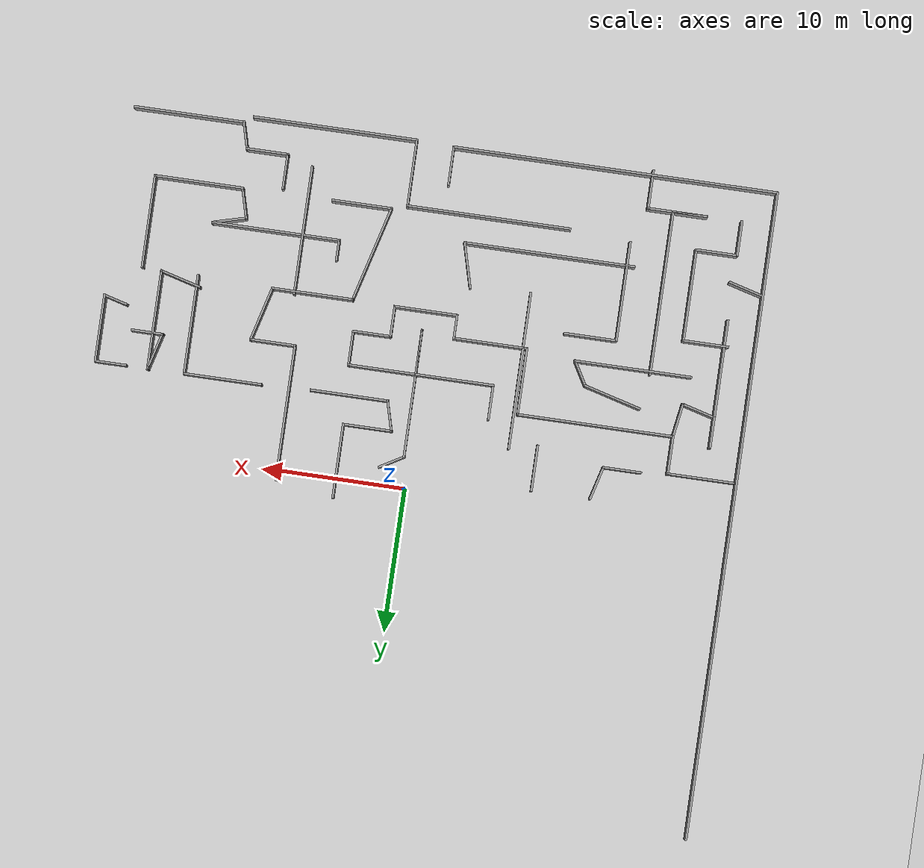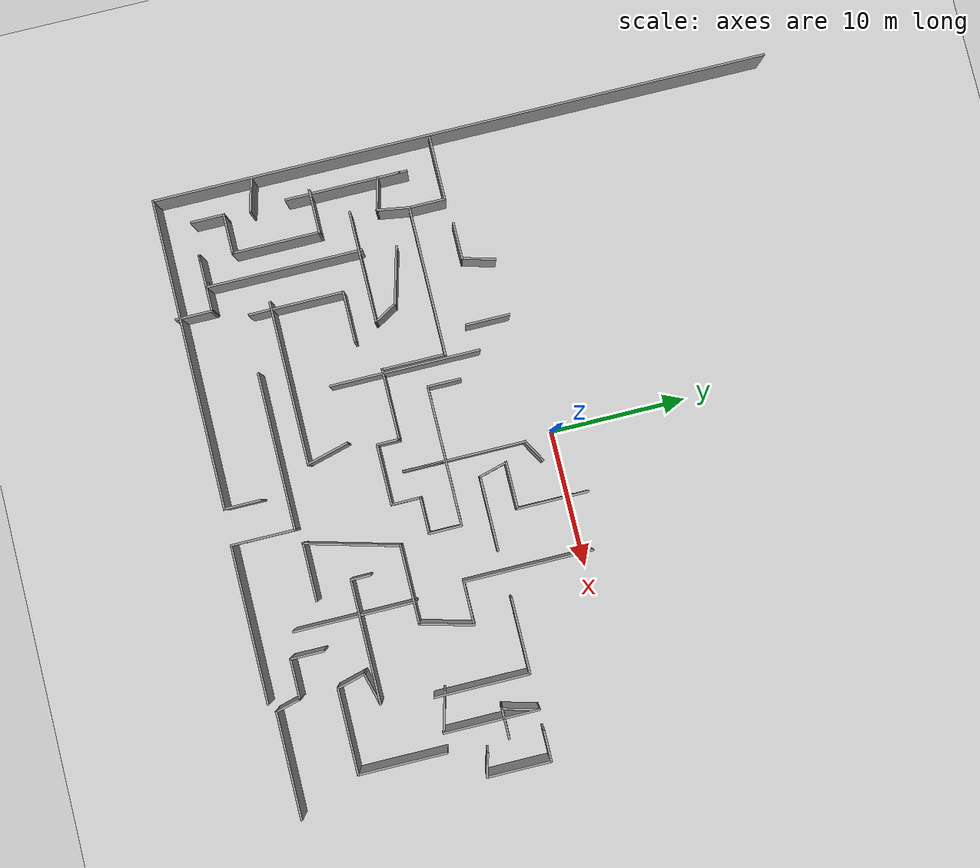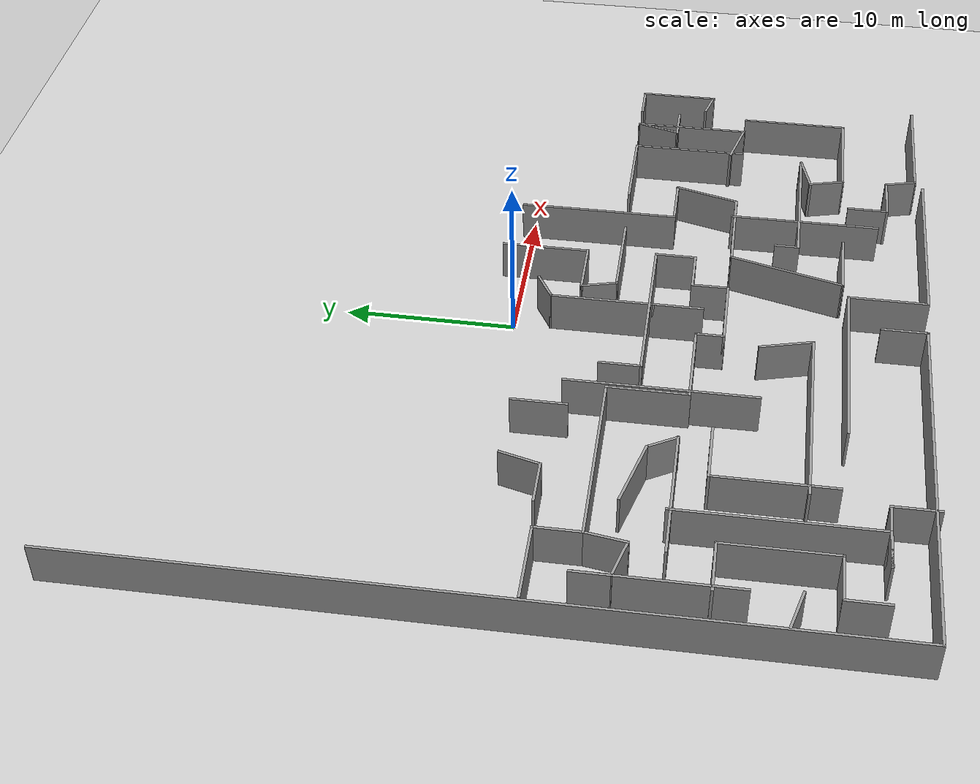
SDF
<sdf version="1.7">
 <world name="default">
  <model name="ground_plane">
   <static>1</static>
   <link name="link">
    <collision name="collision">
     <geometry><plane><normal>0 0 1</normal><size>100 100</size></plane></geometry>
     <surface>
      <contact><collide_bitmask>65535</collide_bitmask></contact>
      <friction><ode><mu>100</mu><mu2>50</mu2></ode></friction>
     </surface>
    </collision>
    <visual name="visual">
     <cast_shadows>0</cast_shadows>
     <geometry><plane><normal>0 0 1</normal><size>100 100</size></plane></geometry>
     <material>
      <script><uri>file://media/materials/scripts/gazebo.material</uri><name>Gazebo/Grey</name></script>
     </material>
    </visual>
   </link>
  </model>
  <model name="Untitled">
   <pose>-0.253478 -1.44353 0 0 -0 0</pose>
   <link name="Wall_0">
    <collision name="Wall_0_Collision">
     <geometry><box><size>45.25 0.15 2.5</size></box></geometry>
     <pose>0 0 1.25 0 -0 0</pose>
    </collision>
    <visual name="Wall_0_Visual">
     <pose>0 0 1.25 0 -0 0</pose>
     <geometry><box><size>45.25 0.15 2.5</size></box></geometry>
     <material>
      <script><uri>file://media/materials/scripts/gazebo.material</uri><name>Gazebo/Grey</name></script>
      <ambient>1 1 1 1</ambient>
     </material>
     <meta><layer>0</layer></meta>
    </visual>
    <pose>-22.4189 0.095442 0 0 -0 -1.5708</pose>
   </link>
   <link name="Wall_1">
    <collision name="Wall_1_Collision">
     <geometry><box><size>22.75 0.15 2.5</size></box></geometry>
     <pose>0 0 1.25 0 -0 0</pose>
    </collision>
    <visual name="Wall_1_Visual">
     <pose>0 0 1.25 0 -0 0</pose>
     <geometry><box><size>22.75 0.15 2.5</size></box></geometry>
     <material>
      <script><uri>file://media/materials/scripts/gazebo.material</uri><name>Gazebo/Grey</name></script>
      <ambient>1 1 1 1</ambient>
     </material>
     <meta><layer>0</layer></meta>
    </visual>
    <pose>-11.1189 -22.4546 0 0 -0 0</pose>
   </link>
   <link name="Wall_10">
    <collision name="Wall_10_Collision">
     <geometry><box><size>5.25 0.15 2.5</size></box></geometry>
     <pose>0 0 1.25 0 -0 0</pose>
    </collision>
    <visual name="Wall_10_Visual">
     <pose>0 0 1.25 0 -0 0</pose>
     <geometry><box><size>5.25 0.15 2.5</size></box></geometry>
     <material>
      <script><uri>file://media/materials/scripts/gazebo.material</uri><name>Gazebo/Grey</name></script>
      <ambient>1 1 1 1</ambient>
     </material>
     <meta><layer>0</layer></meta>
    </visual>
    <pose>-4.23172 -9.35225 0 0 -0 0</pose>
   </link>
   <link name="Wall_11">
    <collision name="Wall_11_Collision">
     <geometry><box><size>1.75 0.15 2.5</size></box></geometry>
     <pose>0 0 1.25 0 -0 0</pose>
    </collision>
    <visual name="Wall_11_Visual">
     <pose>0 0 1.25 0 -0 0</pose>
     <geometry><box><size>1.75 0.15 2.5</size></box></geometry>
     <material>
      <script><uri>file://media/materials/scripts/gazebo.material</uri><name>Gazebo/Grey</name></script>
      <ambient>1 1 1 1</ambient>
     </material>
     <meta><layer>0</layer></meta>
    </visual>
    <pose>-1.68172 -10.1523 0 0 -0 -1.5708</pose>
   </link>
   <link name="Wall_12">
    <collision name="Wall_12_Collision">
     <geometry><box><size>4.5 0.15 2.5</size></box></geometry>
     <pose>0 0 1.25 0 -0 0</pose>
    </collision>
    <visual name="Wall_12_Visual">
     <pose>0 0 1.25 0 -0 0</pose>
     <geometry><box><size>4.5 0.15 2.5</size></box></geometry>
     <material>
      <script><uri>file://media/materials/scripts/gazebo.material</uri><name>Gazebo/Grey</name></script>
      <ambient>1 1 1 1</ambient>
     </material>
     <meta><layer>0</layer></meta>
    </visual>
    <pose>0.493275 -10.9523 0 0 -0 0</pose>
   </link>
   <link name="Wall_121">
    <collision name="Wall_121_Collision">
     <geometry><box><size>9 0.15 2.5</size></box></geometry>
     <pose>0 0 1.25 0 -0 0</pose>
    </collision>
    <visual name="Wall_121_Visual">
     <pose>0 0 1.25 0 -0 0</pose>
     <geometry><box><size>9 0.15 2.5</size></box></geometry>
     <material>
      <script><uri>file://media/materials/scripts/gazebo.material</uri><name>Gazebo/Grey</name></script>
      <ambient>1 1 1 1</ambient>
     </material>
     <meta><layer>0</layer></meta>
    </visual>
    <pose>-20.2666 -8.76925 0 0 -0 1.5708</pose>
   </link>
   <link name="Wall_122">
    <collision name="Wall_122_Collision">
     <geometry><box><size>2.25 0.15 2.5</size></box></geometry>
     <pose>0 0 1.25 0 -0 0</pose>
    </collision>
    <visual name="Wall_122_Visual">
     <pose>0 0 1.25 0 -0 0</pose>
     <geometry><box><size>2.25 0.15 2.5</size></box></geometry>
     <material>
      <script><uri>file://media/materials/scripts/gazebo.material</uri><name>Gazebo/Grey</name></script>
      <ambient>1 1 1 1</ambient>
     </material>
     <meta><layer>0</layer></meta>
    </visual>
    <pose>-20.2666 -5.39425 0 0 -0 -1.5708</pose>
   </link>
   <link name="Wall_123">
    <collision name="Wall_123_Collision">
     <geometry><box><size>2.5 0.15 2.5</size></box></geometry>
     <pose>0 0 1.25 0 -0 0</pose>
    </collision>
    <visual name="Wall_123_Visual">
     <pose>0 0 1.25 0 -0 0</pose>
     <geometry><box><size>2.5 0.15 2.5</size></box></geometry>
     <material>
      <script><uri>file://media/materials/scripts/gazebo.material</uri><name>Gazebo/Grey</name></script>
      <ambient>1 1 1 1</ambient>
     </material>
     <meta><layer>0</layer></meta>
    </visual>
    <pose>-19.1317 -6.74836 0 0 -0 -0.261799</pose>
   </link>
   <link name="Wall_124">
    <collision name="Wall_124_Collision">
     <geometry><box><size>2.47899 0.15 2.5</size></box></geometry>
     <pose>0 0 1.25 0 -0 0</pose>
    </collision>
    <visual name="Wall_124_Visual">
     <pose>0 0 1.25 0 -0 0</pose>
     <geometry><box><size>2.47899 0.15 2.5</size></box></geometry>
     <material>
      <script><uri>file://media/materials/scripts/gazebo.material</uri><name>Gazebo/Grey</name></script>
      <ambient>1 1 1 1</ambient>
     </material>
     <meta><layer>0</layer></meta>
    </visual>
    <pose>-17.8142 -5.90236 0 0 -0 1.41344</pose>
   </link>
   <link name="Wall_126">
    <collision name="Wall_126_Collision">
     <geometry><box><size>2.5 0.15 2.5</size></box></geometry>
     <pose>0 0 1.25 0 -0 0</pose>
    </collision>
    <visual name="Wall_126_Visual">
     <pose>0 0 1.25 0 -0 0</pose>
     <geometry><box><size>2.5 0.15 2.5</size></box></geometry>
     <material>
      <script><uri>file://media/materials/scripts/gazebo.material</uri><name>Gazebo/Grey</name></script>
      <ambient>1 1 1 1</ambient>
     </material>
     <meta><layer>0</layer></meta>
    </visual>
    <pose>-21.1903 -15.557 0 0 -0 -0.261799</pose>
   </link>
   <link name="Wall_128">
    <collision name="Wall_128_Collision">
     <geometry><box><size>2.5 0.15 2.5</size></box></geometry>
     <pose>0 0 1.25 0 -0 0</pose>
    </collision>
    <visual name="Wall_128_Visual">
     <pose>0 0 1.25 0 -0 0</pose>
     <geometry><box><size>2.5 0.15 2.5</size></box></geometry>
     <material>
      <script><uri>file://media/materials/scripts/gazebo.material</uri><name>Gazebo/Grey</name></script>
      <ambient>1 1 1 1</ambient>
     </material>
     <meta><layer>0</layer></meta>
    </visual>
    <pose>-20.2666 -18.9439 0 0 -0 1.5708</pose>
   </link>
   <link name="Wall_129">
    <collision name="Wall_129_Collision">
     <geometry><box><size>3 0.15 2.5</size></box></geometry>
     <pose>0 0 1.25 0 -0 0</pose>
    </collision>
    <visual name="Wall_129_Visual">
     <pose>0 0 1.25 0 -0 0</pose>
     <geometry><box><size>3 0.15 2.5</size></box></geometry>
     <material>
      <script><uri>file://media/materials/scripts/gazebo.material</uri><name>Gazebo/Grey</name></script>
      <ambient>1 1 1 1</ambient>
     </material>
     <meta><layer>0</layer></meta>
    </visual>
    <pose>-18.8416 -17.7689 0 0 -0 0</pose>
   </link>
   <link name="Wall_13">
    <collision name="Wall_13_Collision">
     <geometry><box><size>2.25 0.15 2.5</size></box></geometry>
     <pose>0 0 1.25 0 -0 0</pose>
    </collision>
    <visual name="Wall_13_Visual">
     <pose>0 0 1.25 0 -0 0</pose>
     <geometry><box><size>2.25 0.15 2.5</size></box></geometry>
     <material>
      <script><uri>file://media/materials/scripts/gazebo.material</uri><name>Gazebo/Grey</name></script>
      <ambient>1 1 1 1</ambient>
     </material>
     <meta><layer>0</layer></meta>
    </visual>
    <pose>2.66827 -9.90225 0 0 -0 1.5708</pose>
   </link>
   <link name="Wall_130">
    <collision name="Wall_130_Collision">
     <geometry><box><size>6.5 0.15 2.5</size></box></geometry>
     <pose>0 0 1.25 0 -0 0</pose>
    </collision>
    <visual name="Wall_130_Visual">
     <pose>0 0 1.25 0 -0 0</pose>
     <geometry><box><size>6.5 0.15 2.5</size></box></geometry>
     <material>
      <script><uri>file://media/materials/scripts/gazebo.material</uri><name>Gazebo/Grey</name></script>
      <ambient>1 1 1 1</ambient>
     </material>
     <meta><layer>0</layer></meta>
    </visual>
    <pose>-17.4166 -14.5939 0 0 -0 1.5708</pose>
   </link>
   <link name="Wall_131">
    <collision name="Wall_131_Collision">
     <geometry><box><size>3.25 0.15 2.5</size></box></geometry>
     <pose>0 0 1.25 0 -0 0</pose>
    </collision>
    <visual name="Wall_131_Visual">
     <pose>0 0 1.25 0 -0 0</pose>
     <geometry><box><size>3.25 0.15 2.5</size></box></geometry>
     <material>
      <script><uri>file://media/materials/scripts/gazebo.material</uri><name>Gazebo/Grey</name></script>
      <ambient>1 1 1 1</ambient>
     </material>
     <meta><layer>0</layer></meta>
    </visual>
    <pose>-18.9666 -11.4189 0 0 -0 3.14159</pose>
   </link>
   <link name="Wall_133">
    <collision name="Wall_133_Collision">
     <geometry><box><size>2.75 0.15 2.5</size></box></geometry>
     <pose>0 0 1.25 0 -0 0</pose>
    </collision>
    <visual name="Wall_133_Visual">
     <pose>0 0 1.25 0 -0 0</pose>
     <geometry><box><size>2.75 0.15 2.5</size></box></geometry>
     <material>
      <script><uri>file://media/materials/scripts/gazebo.material</uri><name>Gazebo/Grey</name></script>
      <ambient>1 1 1 1</ambient>
     </material>
     <meta><layer>0</layer></meta>
    </visual>
    <pose>-13.7163 -21.439 0 0 -0 1.5708</pose>
   </link>
   <link name="Wall_134">
    <collision name="Wall_134_Collision">
     <geometry><box><size>4.25 0.15 2.5</size></box></geometry>
     <pose>0 0 1.25 0 -0 0</pose>
    </collision>
    <visual name="Wall_134_Visual">
     <pose>0 0 1.25 0 -0 0</pose>
     <geometry><box><size>4.25 0.15 2.5</size></box></geometry>
     <material>
      <script><uri>file://media/materials/scripts/gazebo.material</uri><name>Gazebo/Grey</name></script>
      <ambient>1 1 1 1</ambient>
     </material>
     <meta><layer>0</layer></meta>
    </visual>
    <pose>-15.7663 -20.139 0 0 -0 3.14159</pose>
   </link>
   <link name="Wall_135">
    <collision name="Wall_135_Collision">
     <geometry><box><size>2.5 0.15 2.5</size></box></geometry>
     <pose>0 0 1.25 0 -0 0</pose>
    </collision>
    <visual name="Wall_135_Visual">
     <pose>0 0 1.25 0 -0 0</pose>
     <geometry><box><size>2.5 0.15 2.5</size></box></geometry>
     <material>
      <script><uri>file://media/materials/scripts/gazebo.material</uri><name>Gazebo/Grey</name></script>
      <ambient>1 1 1 1</ambient>
     </material>
     <meta><layer>0</layer></meta>
    </visual>
    <pose>-16.6413 -20.139 0 0 -0 0</pose>
   </link>
   <link name="Wall_136">
    <collision name="Wall_136_Collision">
     <geometry><box><size>11.5 0.15 2.5</size></box></geometry>
     <pose>0 0 1.25 0 -0 0</pose>
    </collision>
    <visual name="Wall_136_Visual">
     <pose>0 0 1.25 0 -0 0</pose>
     <geometry><box><size>11.5 0.15 2.5</size></box></geometry>
     <material>
      <script><uri>file://media/materials/scripts/gazebo.material</uri><name>Gazebo/Grey</name></script>
      <ambient>1 1 1 1</ambient>
     </material>
     <meta><layer>0</layer></meta>
    </visual>
    <pose>-15.4663 -14.464 0 0 -0 1.5708</pose>
   </link>
   <link name="Wall_138">
    <collision name="Wall_138_Collision">
     <geometry><box><size>11.5 0.15 2.5</size></box></geometry>
     <pose>0 0 1.25 0 -0 0</pose>
    </collision>
    <visual name="Wall_138_Visual">
     <pose>0 0 1.25 0 -0 0</pose>
     <geometry><box><size>11.5 0.15 2.5</size></box></geometry>
     <material>
      <script><uri>file://media/materials/scripts/gazebo.material</uri><name>Gazebo/Grey</name></script>
      <ambient>1 1 1 1</ambient>
     </material>
     <meta><layer>0</layer></meta>
    </visual>
    <pose>-2.8946 -17.9666 0 0 -0 0</pose>
   </link>
   <link name="Wall_139">
    <collision name="Wall_139_Collision">
     <geometry><box><size>4.75 0.15 2.5</size></box></geometry>
     <pose>0 0 1.25 0 -0 0</pose>
    </collision>
    <visual name="Wall_139_Visual">
     <pose>0 0 1.25 0 -0 0</pose>
     <geometry><box><size>4.75 0.15 2.5</size></box></geometry>
     <material>
      <script><uri>file://media/materials/scripts/gazebo.material</uri><name>Gazebo/Grey</name></script>
      <ambient>1 1 1 1</ambient>
     </material>
     <meta><layer>0</layer></meta>
    </visual>
    <pose>2.7804 -20.2666 0 0 -0 -1.5708</pose>
   </link>
   <link name="Wall_14">
    <collision name="Wall_14_Collision">
     <geometry><box><size>2.75 0.15 2.5</size></box></geometry>
     <pose>0 0 1.25 0 -0 0</pose>
    </collision>
    <visual name="Wall_14_Visual">
     <pose>0 0 1.25 0 -0 0</pose>
     <geometry><box><size>2.75 0.15 2.5</size></box></geometry>
     <material>
      <script><uri>file://media/materials/scripts/gazebo.material</uri><name>Gazebo/Grey</name></script>
      <ambient>1 1 1 1</ambient>
     </material>
     <meta><layer>0</layer></meta>
    </visual>
    <pose>3.96828 -8.85225 0 0 -0 0</pose>
   </link>
   <link name="Wall_140">
    <collision name="Wall_140_Collision">
     <geometry><box><size>11.5 0.15 2.5</size></box></geometry>
     <pose>0 0 1.25 0 -0 0</pose>
    </collision>
    <visual name="Wall_140_Visual">
     <pose>0 0 1.25 0 -0 0</pose>
     <geometry><box><size>11.5 0.15 2.5</size></box></geometry>
     <material>
      <script><uri>file://media/materials/scripts/gazebo.material</uri><name>Gazebo/Grey</name></script>
      <ambient>1 1 1 1</ambient>
     </material>
     <meta><layer>0</layer></meta>
    </visual>
    <pose>8.4554 -22.5666 0 0 -0 0</pose>
   </link>
   <link name="Wall_142">
    <collision name="Wall_142_Collision">
     <geometry><box><size>2.75 0.15 2.5</size></box></geometry>
     <pose>0 0 1.25 0 -0 0</pose>
    </collision>
    <visual name="Wall_142_Visual">
     <pose>0 0 1.25 0 -0 0</pose>
     <geometry><box><size>2.75 0.15 2.5</size></box></geometry>
     <material>
      <script><uri>file://media/materials/scripts/gazebo.material</uri><name>Gazebo/Grey</name></script>
      <ambient>1 1 1 1</ambient>
     </material>
     <meta><layer>0</layer></meta>
    </visual>
    <pose>-14.475 -1.9651 0 0 -0 0</pose>
   </link>
   <link name="Wall_143">
    <collision name="Wall_143_Collision">
     <geometry><box><size>2.5 0.15 2.5</size></box></geometry>
     <pose>0 0 1.25 0 -0 0</pose>
    </collision>
    <visual name="Wall_143_Visual">
     <pose>0 0 1.25 0 -0 0</pose>
     <geometry><box><size>2.5 0.15 2.5</size></box></geometry>
     <material>
      <script><uri>file://media/materials/scripts/gazebo.material</uri><name>Gazebo/Grey</name></script>
      <ambient>1 1 1 1</ambient>
     </material>
     <meta><layer>0</layer></meta>
    </visual>
    <pose>-12.8709 -0.830138 0 0 -0 1.309</pose>
   </link>
   <link name="Wall_145">
    <collision name="Wall_145_Collision">
     <geometry><box><size>3.25 0.15 2.5</size></box></geometry>
     <pose>0 0 1.25 0 -0 0</pose>
    </collision>
    <visual name="Wall_145_Visual">
     <pose>0 0 1.25 0 -0 0</pose>
     <geometry><box><size>3.25 0.15 2.5</size></box></geometry>
     <material>
      <script><uri>file://media/materials/scripts/gazebo.material</uri><name>Gazebo/Grey</name></script>
      <ambient>1 1 1 1</ambient>
     </material>
     <meta><layer>0</layer></meta>
    </visual>
    <pose>-8.46674 -1.24517 0 0 -0 -1.5708</pose>
   </link>
   <link name="Wall_15">
    <collision name="Wall_15_Collision">
     <geometry><box><size>2.5 0.15 2.5</size></box></geometry>
     <pose>0 0 1.25 0 -0 0</pose>
    </collision>
    <visual name="Wall_15_Visual">
     <pose>0 0 1.25 0 -0 0</pose>
     <geometry><box><size>2.5 0.15 2.5</size></box></geometry>
     <material>
      <script><uri>file://media/materials/scripts/gazebo.material</uri><name>Gazebo/Grey</name></script>
      <ambient>1 1 1 1</ambient>
     </material>
     <meta><layer>0</layer></meta>
    </visual>
    <pose>5.26828 -7.67725 0 0 -0 1.5708</pose>
   </link>
   <link name="Wall_153">
    <collision name="Wall_153_Collision">
     <geometry><box><size>6.5 0.15 2.5</size></box></geometry>
     <pose>0 0 1.25 0 -0 0</pose>
    </collision>
    <visual name="Wall_153_Visual">
     <pose>0 0 1.25 0 -0 0</pose>
     <geometry><box><size>6.5 0.15 2.5</size></box></geometry>
     <material>
      <script><uri>file://media/materials/scripts/gazebo.material</uri><name>Gazebo/Grey</name></script>
      <ambient>1 1 1 1</ambient>
     </material>
     <meta><layer>0</layer></meta>
    </visual>
    <pose>20.3454 -14.4041 0 0 -0 -1.5708</pose>
   </link>
   <link name="Wall_154">
    <collision name="Wall_154_Collision">
     <geometry><box><size>6.25 0.15 2.5</size></box></geometry>
     <pose>0 0 1.25 0 -0 0</pose>
    </collision>
    <visual name="Wall_154_Visual">
     <pose>0 0 1.25 0 -0 0</pose>
     <geometry><box><size>6.25 0.15 2.5</size></box></geometry>
     <material>
      <script><uri>file://media/materials/scripts/gazebo.material</uri><name>Gazebo/Grey</name></script>
      <ambient>1 1 1 1</ambient>
     </material>
     <meta><layer>0</layer></meta>
    </visual>
    <pose>17.2954 -17.5791 0 0 -0 3.14159</pose>
   </link>
   <link name="Wall_155">
    <collision name="Wall_155_Collision">
     <geometry><box><size>2.25 0.15 2.5</size></box></geometry>
     <pose>0 0 1.25 0 -0 0</pose>
    </collision>
    <visual name="Wall_155_Visual">
     <pose>0 0 1.25 0 -0 0</pose>
     <geometry><box><size>2.25 0.15 2.5</size></box></geometry>
     <material>
      <script><uri>file://media/materials/scripts/gazebo.material</uri><name>Gazebo/Grey</name></script>
      <ambient>1 1 1 1</ambient>
     </material>
     <meta><layer>0</layer></meta>
    </visual>
    <pose>13.9737 -16.5649 0 0 -0 1.8326</pose>
   </link>
   <link name="Wall_156">
    <collision name="Wall_156_Collision">
     <geometry><box><size>2.5 0.15 2.5</size></box></geometry>
     <pose>0 0 1.25 0 -0 0</pose>
    </collision>
    <visual name="Wall_156_Visual">
     <pose>0 0 1.25 0 -0 0</pose>
     <geometry><box><size>2.5 0.15 2.5</size></box></geometry>
     <material>
      <script><uri>file://media/materials/scripts/gazebo.material</uri><name>Gazebo/Grey</name></script>
      <ambient>1 1 1 1</ambient>
     </material>
     <meta><layer>0</layer></meta>
    </visual>
    <pose>14.8369 -15.2466 0 0 -0 0.261799</pose>
   </link>
   <link name="Wall_157">
    <collision name="Wall_157_Collision">
     <geometry><box><size>9 0.15 2.5</size></box></geometry>
     <pose>0 0 1.25 0 -0 0</pose>
    </collision>
    <visual name="Wall_157_Visual">
     <pose>0 0 1.25 0 -0 0</pose>
     <geometry><box><size>9 0.15 2.5</size></box></geometry>
     <material>
      <script><uri>file://media/materials/scripts/gazebo.material</uri><name>Gazebo/Grey</name></script>
      <ambient>1 1 1 1</ambient>
     </material>
     <meta><layer>0</layer></meta>
    </visual>
    <pose>11.5469 -14.9425 0 0 -0 3.14159</pose>
   </link>
   <link name="Wall_158">
    <collision name="Wall_158_Collision">
     <geometry><box><size>1.5 0.15 2.5</size></box></geometry>
     <pose>0 0 1.25 0 -0 0</pose>
    </collision>
    <visual name="Wall_158_Visual">
     <pose>0 0 1.25 0 -0 0</pose>
     <geometry><box><size>1.5 0.15 2.5</size></box></geometry>
     <material>
      <script><uri>file://media/materials/scripts/gazebo.material</uri><name>Gazebo/Grey</name></script>
      <ambient>1 1 1 1</ambient>
     </material>
     <meta><layer>0</layer></meta>
    </visual>
    <pose>7.12186 -14.2675 0 0 -0 1.5708</pose>
   </link>
   <link name="Wall_16">
    <collision name="Wall_16_Collision">
     <geometry><box><size>10.25 0.15 2.5</size></box></geometry>
     <pose>0 0 1.25 0 -0 0</pose>
    </collision>
    <visual name="Wall_16_Visual">
     <pose>0 0 1.25 0 -0 0</pose>
     <geometry><box><size>10.25 0.15 2.5</size></box></geometry>
     <material>
      <script><uri>file://media/materials/scripts/gazebo.material</uri><name>Gazebo/Grey</name></script>
      <ambient>1 1 1 1</ambient>
     </material>
     <meta><layer>0</layer></meta>
    </visual>
    <pose>0.218275 -6.50225 0 0 -0 3.14159</pose>
   </link>
   <link name="Wall_160">
    <collision name="Wall_160_Collision">
     <geometry><box><size>9 0.15 2.5</size></box></geometry>
     <pose>0 0 1.25 0 -0 0</pose>
    </collision>
    <visual name="Wall_160_Visual">
     <pose>0 0 1.25 0 -0 0</pose>
     <geometry><box><size>9 0.15 2.5</size></box></geometry>
     <material>
      <script><uri>file://media/materials/scripts/gazebo.material</uri><name>Gazebo/Grey</name></script>
      <ambient>1 1 1 1</ambient>
     </material>
     <meta><layer>0</layer></meta>
    </visual>
    <pose>9.67776 -15.2798 0 0 -0 -1.5708</pose>
   </link>
   <link name="Wall_162">
    <collision name="Wall_162_Collision">
     <geometry><box><size>2.25 0.15 2.5</size></box></geometry>
     <pose>0 0 1.25 0 -0 0</pose>
    </collision>
    <visual name="Wall_162_Visual">
     <pose>0 0 1.25 0 -0 0</pose>
     <geometry><box><size>2.25 0.15 2.5</size></box></geometry>
     <material>
      <script><uri>file://media/materials/scripts/gazebo.material</uri><name>Gazebo/Grey</name></script>
      <ambient>1 1 1 1</ambient>
     </material>
     <meta><layer>0</layer></meta>
    </visual>
    <pose>21.5826 -4.30451 0 0 -0 0</pose>
   </link>
   <link name="Wall_163">
    <collision name="Wall_163_Collision">
     <geometry><box><size>4.75 0.15 2.5</size></box></geometry>
     <pose>0 0 1.25 0 -0 0</pose>
    </collision>
    <visual name="Wall_163_Visual">
     <pose>0 0 1.25 0 -0 0</pose>
     <geometry><box><size>4.75 0.15 2.5</size></box></geometry>
     <material>
      <script><uri>file://media/materials/scripts/gazebo.material</uri><name>Gazebo/Grey</name></script>
      <ambient>1 1 1 1</ambient>
     </material>
     <meta><layer>0</layer></meta>
    </visual>
    <pose>22.6326 -6.60451 0 0 -0 -1.5708</pose>
   </link>
   <link name="Wall_164">
    <collision name="Wall_164_Collision">
     <geometry><box><size>1.75 0.15 2.5</size></box></geometry>
     <pose>0 0 1.25 0 -0 0</pose>
    </collision>
    <visual name="Wall_164_Visual">
     <pose>0 0 1.25 0 -0 0</pose>
     <geometry><box><size>1.75 0.15 2.5</size></box></geometry>
     <material>
      <script><uri>file://media/materials/scripts/gazebo.material</uri><name>Gazebo/Grey</name></script>
      <ambient>1 1 1 1</ambient>
     </material>
     <meta><layer>0</layer></meta>
    </visual>
    <pose>21.8599 -8.69745 0 0 -0 2.87979</pose>
   </link>
   <link name="Wall_17">
    <collision name="Wall_17_Collision">
     <geometry><box><size>2.5 0.15 2.5</size></box></geometry>
     <pose>0 0 1.25 0 -0 0</pose>
    </collision>
    <visual name="Wall_17_Visual">
     <pose>0 0 1.25 0 -0 0</pose>
     <geometry><box><size>2.5 0.15 2.5</size></box></geometry>
     <material>
      <script><uri>file://media/materials/scripts/gazebo.material</uri><name>Gazebo/Grey</name></script>
      <ambient>1 1 1 1</ambient>
     </material>
     <meta><layer>0</layer></meta>
    </visual>
    <pose>-4.83172 -5.32725 0 0 -0 1.5708</pose>
   </link>
   <link name="Wall_170">
    <collision name="Wall_170_Collision">
     <geometry><box><size>3 0.15 2.5</size></box></geometry>
     <pose>0 0 1.25 0 -0 0</pose>
    </collision>
    <visual name="Wall_170_Visual">
     <pose>0 0 1.25 0 -0 0</pose>
     <geometry><box><size>3 0.15 2.5</size></box></geometry>
     <material>
      <script><uri>file://media/materials/scripts/gazebo.material</uri><name>Gazebo/Grey</name></script>
      <ambient>1 1 1 1</ambient>
     </material>
     <meta><layer>0</layer></meta>
    </visual>
    <pose>17.6045 -10.7558 0 0 -0 -0.261799</pose>
   </link>
   <link name="Wall_171">
    <collision name="Wall_171_Collision">
     <geometry><box><size>7 0.15 2.5</size></box></geometry>
     <pose>0 0 1.25 0 -0 0</pose>
    </collision>
    <visual name="Wall_171_Visual">
     <pose>0 0 1.25 0 -0 0</pose>
     <geometry><box><size>7 0.15 2.5</size></box></geometry>
     <material>
      <script><uri>file://media/materials/scripts/gazebo.material</uri><name>Gazebo/Grey</name></script>
      <ambient>1 1 1 1</ambient>
     </material>
     <meta><layer>0</layer></meta>
    </visual>
    <pose>18.981 -7.69959 0 0 -0 1.5708</pose>
   </link>
   <link name="Wall_172">
    <collision name="Wall_172_Collision">
     <geometry><box><size>2.75 0.15 2.5</size></box></geometry>
     <pose>0 0 1.25 0 -0 0</pose>
    </collision>
    <visual name="Wall_172_Visual">
     <pose>0 0 1.25 0 -0 0</pose>
     <geometry><box><size>2.75 0.15 2.5</size></box></geometry>
     <material>
      <script><uri>file://media/materials/scripts/gazebo.material</uri><name>Gazebo/Grey</name></script>
      <ambient>1 1 1 1</ambient>
     </material>
     <meta><layer>0</layer></meta>
    </visual>
    <pose>18.6445 -5.5303 0 0 -0 -1.8326</pose>
   </link>
   <link name="Wall_173">
    <collision name="Wall_173_Collision">
     <geometry><box><size>2.25 0.15 2.5</size></box></geometry>
     <pose>0 0 1.25 0 -0 0</pose>
    </collision>
    <visual name="Wall_173_Visual">
     <pose>0 0 1.25 0 -0 0</pose>
     <geometry><box><size>2.25 0.15 2.5</size></box></geometry>
     <material>
      <script><uri>file://media/materials/scripts/gazebo.material</uri><name>Gazebo/Grey</name></script>
      <ambient>1 1 1 1</ambient>
     </material>
     <meta><layer>0</layer></meta>
    </visual>
    <pose>19.3581 -6.786 0 0 -0 0</pose>
   </link>
   <link name="Wall_2">
    <collision name="Wall_2_Collision">
     <geometry><box><size>2.75 0.15 2.5</size></box></geometry>
     <pose>0 0 1.25 0 -0 0</pose>
    </collision>
    <visual name="Wall_2_Visual">
     <pose>0 0 1.25 0 -0 0</pose>
     <geometry><box><size>2.75 0.15 2.5</size></box></geometry>
     <material>
      <script><uri>file://media/materials/scripts/gazebo.material</uri><name>Gazebo/Grey</name></script>
      <ambient>1 1 1 1</ambient>
     </material>
     <meta><layer>0</layer></meta>
    </visual>
    <pose>0.181122 -21.1546 0 0 -0 1.5708</pose>
   </link>
   <link name="Wall_4">
    <collision name="Wall_4_Collision">
     <geometry><box><size>11 0.15 2.5</size></box></geometry>
     <pose>0 0 1.25 0 -0 0</pose>
    </collision>
    <visual name="Wall_4_Visual">
     <pose>0 0 1.25 0 -0 0</pose>
     <geometry><box><size>11 0.15 2.5</size></box></geometry>
     <material>
      <script><uri>file://media/materials/scripts/gazebo.material</uri><name>Gazebo/Grey</name></script>
      <ambient>1 1 1 1</ambient>
     </material>
     <meta><layer>0</layer></meta>
    </visual>
    <pose>-6.51092 -7.76441 0 0 -0 -1.5708</pose>
   </link>
   <link name="Wall_40">
    <collision name="Wall_40_Collision">
     <geometry><box><size>2 0.15 2.5</size></box></geometry>
     <pose>0 0 1.25 0 -0 0</pose>
    </collision>
    <visual name="Wall_40_Visual">
     <pose>0 0 1.25 0 -0 0</pose>
     <geometry><box><size>2 0.15 2.5</size></box></geometry>
     <material>
      <script><uri>file://media/materials/scripts/gazebo.material</uri><name>Gazebo/Grey</name></script>
      <ambient>1 1 1 1</ambient>
     </material>
     <meta><layer>0</layer></meta>
    </visual>
    <pose>1.38158 -0.275348 0 0 -0 -2.61799</pose>
   </link>
   <link name="Wall_41">
    <collision name="Wall_41_Collision">
     <geometry><box><size>9 0.15 2.5</size></box></geometry>
     <pose>0 0 1.25 0 -0 0</pose>
    </collision>
    <visual name="Wall_41_Visual">
     <pose>0 0 1.25 0 -0 0</pose>
     <geometry><box><size>9 0.15 2.5</size></box></geometry>
     <material>
      <script><uri>file://media/materials/scripts/gazebo.material</uri><name>Gazebo/Grey</name></script>
      <ambient>1 1 1 1</ambient>
     </material>
     <meta><layer>0</layer></meta>
    </visual>
    <pose>0.580507 -5.16285 0 0 -0 -1.5708</pose>
   </link>
   <link name="Wall_42">
    <collision name="Wall_42_Collision">
     <geometry><box><size>3 0.15 2.5</size></box></geometry>
     <pose>0 0 1.25 0 -0 0</pose>
    </collision>
    <visual name="Wall_42_Visual">
     <pose>0 0 1.25 0 -0 0</pose>
     <geometry><box><size>3 0.15 2.5</size></box></geometry>
     <material>
      <script><uri>file://media/materials/scripts/gazebo.material</uri><name>Gazebo/Grey</name></script>
      <ambient>1 1 1 1</ambient>
     </material>
     <meta><layer>0</layer></meta>
    </visual>
    <pose>0.580507 -8.16285 0 0 -0 1.5708</pose>
   </link>
   <link name="Wall_58">
    <collision name="Wall_58_Collision">
     <geometry><box><size>3.75 0.15 2.5</size></box></geometry>
     <pose>0 0 1.25 0 -0 0</pose>
    </collision>
    <visual name="Wall_58_Visual">
     <pose>0 0 1.25 0 -0 0</pose>
     <geometry><box><size>3.75 0.15 2.5</size></box></geometry>
     <material>
      <script><uri>file://media/materials/scripts/gazebo.material</uri><name>Gazebo/Grey</name></script>
      <ambient>1 1 1 1</ambient>
     </material>
     <meta><layer>0</layer></meta>
    </visual>
    <pose>-11.0246 -10.7613 0 0 -0 3.14159</pose>
   </link>
   <link name="Wall_59">
    <collision name="Wall_59_Collision">
     <geometry><box><size>7 0.15 2.5</size></box></geometry>
     <pose>0 0 1.25 0 -0 0</pose>
    </collision>
    <visual name="Wall_59_Visual">
     <pose>0 0 1.25 0 -0 0</pose>
     <geometry><box><size>7 0.15 2.5</size></box></geometry>
     <material>
      <script><uri>file://media/materials/scripts/gazebo.material</uri><name>Gazebo/Grey</name></script>
      <ambient>1 1 1 1</ambient>
     </material>
     <meta><layer>0</layer></meta>
    </visual>
    <pose>-12.8246 -14.1863 0 0 -0 -1.5708</pose>
   </link>
   <link name="Wall_6">
    <collision name="Wall_6_Collision">
     <geometry><box><size>4.75 0.15 2.5</size></box></geometry>
     <pose>0 0 1.25 0 -0 0</pose>
    </collision>
    <visual name="Wall_6_Visual">
     <pose>0 0 1.25 0 -0 0</pose>
     <geometry><box><size>4.75 0.15 2.5</size></box></geometry>
     <material>
      <script><uri>file://media/materials/scripts/gazebo.material</uri><name>Gazebo/Grey</name></script>
      <ambient>1 1 1 1</ambient>
     </material>
     <meta><layer>0</layer></meta>
    </visual>
    <pose>-19.9317 -2.15225 0 0 -0 0</pose>
   </link>
   <link name="Wall_61">
    <collision name="Wall_61_Collision">
     <geometry><box><size>12 0.15 2.5</size></box></geometry>
     <pose>0 0 1.25 0 -0 0</pose>
    </collision>
    <visual name="Wall_61_Visual">
     <pose>0 0 1.25 0 -0 0</pose>
     <geometry><box><size>12 0.15 2.5</size></box></geometry>
     <material>
      <script><uri>file://media/materials/scripts/gazebo.material</uri><name>Gazebo/Grey</name></script>
      <ambient>1 1 1 1</ambient>
     </material>
     <meta><layer>0</layer></meta>
    </visual>
    <pose>-7.41699 -16.0015 0 0 -0 0</pose>
   </link>
   <link name="Wall_62">
    <collision name="Wall_62_Collision">
     <geometry><box><size>3.25 0.15 2.5</size></box></geometry>
     <pose>0 0 1.25 0 -0 0</pose>
    </collision>
    <visual name="Wall_62_Visual">
     <pose>0 0 1.25 0 -0 0</pose>
     <geometry><box><size>3.25 0.15 2.5</size></box></geometry>
     <material>
      <script><uri>file://media/materials/scripts/gazebo.material</uri><name>Gazebo/Grey</name></script>
      <ambient>1 1 1 1</ambient>
     </material>
     <meta><layer>0</layer></meta>
    </visual>
    <pose>-1.89315 -14.5043 0 0 -0 1.8326</pose>
   </link>
   <link name="Wall_65">
    <collision name="Wall_65_Collision">
     <geometry><box><size>5.25 0.15 2.5</size></box></geometry>
     <pose>0 0 1.25 0 -0 0</pose>
    </collision>
    <visual name="Wall_65_Visual">
     <pose>0 0 1.25 0 -0 0</pose>
     <geometry><box><size>5.25 0.15 2.5</size></box></geometry>
     <material>
      <script><uri>file://media/materials/scripts/gazebo.material</uri><name>Gazebo/Grey</name></script>
      <ambient>1 1 1 1</ambient>
     </material>
     <meta><layer>0</layer></meta>
    </visual>
    <pose>5.04862 0.163709 0 0 -0 -1.5708</pose>
   </link>
   <link name="Wall_66">
    <collision name="Wall_66_Collision">
     <geometry><box><size>3.5 0.15 2.5</size></box></geometry>
     <pose>0 0 1.25 0 -0 0</pose>
    </collision>
    <visual name="Wall_66_Visual">
     <pose>0 0 1.25 0 -0 0</pose>
     <geometry><box><size>3.5 0.15 2.5</size></box></geometry>
     <material>
      <script><uri>file://media/materials/scripts/gazebo.material</uri><name>Gazebo/Grey</name></script>
      <ambient>1 1 1 1</ambient>
     </material>
     <meta><layer>0</layer></meta>
    </visual>
    <pose>3.37362 -2.38629 0 0 -0 3.14159</pose>
   </link>
   <link name="Wall_67">
    <collision name="Wall_67_Collision">
     <geometry><box><size>2.25 0.15 2.5</size></box></geometry>
     <pose>0 0 1.25 0 -0 0</pose>
    </collision>
    <visual name="Wall_67_Visual">
     <pose>0 0 1.25 0 -0 0</pose>
     <geometry><box><size>2.25 0.15 2.5</size></box></geometry>
     <material>
      <script><uri>file://media/materials/scripts/gazebo.material</uri><name>Gazebo/Grey</name></script>
      <ambient>1 1 1 1</ambient>
     </material>
     <meta><layer>0</layer></meta>
    </visual>
    <pose>1.97038 -3.40051 0 0 -0 -1.309</pose>
   </link>
   <link name="Wall_68">
    <collision name="Wall_68_Collision">
     <geometry><box><size>5.5 0.15 2.5</size></box></geometry>
     <pose>0 0 1.25 0 -0 0</pose>
    </collision>
    <visual name="Wall_68_Visual">
     <pose>0 0 1.25 0 -0 0</pose>
     <geometry><box><size>5.5 0.15 2.5</size></box></geometry>
     <material>
      <script><uri>file://media/materials/scripts/gazebo.material</uri><name>Gazebo/Grey</name></script>
      <ambient>1 1 1 1</ambient>
     </material>
     <meta><layer>0</layer></meta>
    </visual>
    <pose>4.91714 -4.41474 0 0 -0 0</pose>
   </link>
   <link name="Wall_7">
    <collision name="Wall_7_Collision">
     <geometry><box><size>2.75 0.15 2.5</size></box></geometry>
     <pose>0 0 1.25 0 -0 0</pose>
    </collision>
    <visual name="Wall_7_Visual">
     <pose>0 0 1.25 0 -0 0</pose>
     <geometry><box><size>2.75 0.15 2.5</size></box></geometry>
     <material>
      <script><uri>file://media/materials/scripts/gazebo.material</uri><name>Gazebo/Grey</name></script>
      <ambient>1 1 1 1</ambient>
     </material>
     <meta><layer>0</layer></meta>
    </visual>
    <pose>-17.6317 -3.45225 0 0 -0 -1.5708</pose>
   </link>
   <link name="Wall_71">
    <collision name="Wall_71_Collision">
     <geometry><box><size>7.75 0.15 2.5</size></box></geometry>
     <pose>0 0 1.25 0 -0 0</pose>
    </collision>
    <visual name="Wall_71_Visual">
     <pose>0 0 1.25 0 -0 0</pose>
     <geometry><box><size>7.75 0.15 2.5</size></box></geometry>
     <material>
      <script><uri>file://media/materials/scripts/gazebo.material</uri><name>Gazebo/Grey</name></script>
      <ambient>1 1 1 1</ambient>
     </material>
     <meta><layer>0</layer></meta>
    </visual>
    <pose>18.6041 -22.111 0 0 -0 3.14159</pose>
   </link>
   <link name="Wall_72">
    <collision name="Wall_72_Collision">
     <geometry><box><size>2 0.15 2.5</size></box></geometry>
     <pose>0 0 1.25 0 -0 0</pose>
    </collision>
    <visual name="Wall_72_Visual">
     <pose>0 0 1.25 0 -0 0</pose>
     <geometry><box><size>2 0.15 2.5</size></box></geometry>
     <material>
      <script><uri>file://media/materials/scripts/gazebo.material</uri><name>Gazebo/Grey</name></script>
      <ambient>1 1 1 1</ambient>
     </material>
     <meta><layer>0</layer></meta>
    </visual>
    <pose>14.5647 -21.2175 0 0 -0 1.8326</pose>
   </link>
   <link name="Wall_73">
    <collision name="Wall_73_Collision">
     <geometry><box><size>3 0.15 2.5</size></box></geometry>
     <pose>0 0 1.25 0 -0 0</pose>
    </collision>
    <visual name="Wall_73_Visual">
     <pose>0 0 1.25 0 -0 0</pose>
     <geometry><box><size>3 0.15 2.5</size></box></geometry>
     <material>
      <script><uri>file://media/materials/scripts/gazebo.material</uri><name>Gazebo/Grey</name></script>
      <ambient>1 1 1 1</ambient>
     </material>
     <meta><layer>0</layer></meta>
    </visual>
    <pose>12.9003 -20.324 0 0 -0 3.14159</pose>
   </link>
   <link name="Wall_74">
    <collision name="Wall_74_Collision">
     <geometry><box><size>2.5 0.15 2.5</size></box></geometry>
     <pose>0 0 1.25 0 -0 0</pose>
    </collision>
    <visual name="Wall_74_Visual">
     <pose>0 0 1.25 0 -0 0</pose>
     <geometry><box><size>2.5 0.15 2.5</size></box></geometry>
     <material>
      <script><uri>file://media/materials/scripts/gazebo.material</uri><name>Gazebo/Grey</name></script>
      <ambient>1 1 1 1</ambient>
     </material>
     <meta><layer>0</layer></meta>
    </visual>
    <pose>11.4753 -19.149 0 0 -0 1.5708</pose>
   </link>
   <link name="Wall_76">
    <collision name="Wall_76_Collision">
     <geometry><box><size>9.5 0.15 2.5</size></box></geometry>
     <pose>0 0 1.25 0 -0 0</pose>
    </collision>
    <visual name="Wall_76_Visual">
     <pose>0 0 1.25 0 -0 0</pose>
     <geometry><box><size>9.5 0.15 2.5</size></box></geometry>
     <material>
      <script><uri>file://media/materials/scripts/gazebo.material</uri><name>Gazebo/Grey</name></script>
      <ambient>1 1 1 1</ambient>
     </material>
     <meta><layer>0</layer></meta>
    </visual>
    <pose>9.1163 -2.61632 0 0 -0 -1.5708</pose>
   </link>
   <link name="Wall_77">
    <collision name="Wall_77_Collision">
     <geometry><box><size>3.25 0.15 2.5</size></box></geometry>
     <pose>0 0 1.25 0 -0 0</pose>
    </collision>
    <visual name="Wall_77_Visual">
     <pose>0 0 1.25 0 -0 0</pose>
     <geometry><box><size>3.25 0.15 2.5</size></box></geometry>
     <material>
      <script><uri>file://media/materials/scripts/gazebo.material</uri><name>Gazebo/Grey</name></script>
      <ambient>1 1 1 1</ambient>
     </material>
     <meta><layer>0</layer></meta>
    </visual>
    <pose>10.6663 -7.29132 0 0 -0 0</pose>
   </link>
   <link name="Wall_78">
    <collision name="Wall_78_Collision">
     <geometry><box><size>4 0.15 2.5</size></box></geometry>
     <pose>0 0 1.25 0 -0 0</pose>
    </collision>
    <visual name="Wall_78_Visual">
     <pose>0 0 1.25 0 -0 0</pose>
     <geometry><box><size>4 0.15 2.5</size></box></geometry>
     <material>
      <script><uri>file://media/materials/scripts/gazebo.material</uri><name>Gazebo/Grey</name></script>
      <ambient>1 1 1 1</ambient>
     </material>
     <meta><layer>0</layer></meta>
    </visual>
    <pose>11.7181 -9.15073 0 0 -0 -1.8326</pose>
   </link>
   <link name="Wall_79">
    <collision name="Wall_79_Collision">
     <geometry><box><size>5.75 0.15 2.5</size></box></geometry>
     <pose>0 0 1.25 0 -0 0</pose>
    </collision>
    <visual name="Wall_79_Visual">
     <pose>0 0 1.25 0 -0 0</pose>
     <geometry><box><size>5.75 0.15 2.5</size></box></geometry>
     <material>
      <script><uri>file://media/materials/scripts/gazebo.material</uri><name>Gazebo/Grey</name></script>
      <ambient>1 1 1 1</ambient>
     </material>
     <meta><layer>0</layer></meta>
    </visual>
    <pose>8.41985 -11.0101 0 0 -0 3.14159</pose>
   </link>
   <link name="Wall_8">
    <collision name="Wall_8_Collision">
     <geometry><box><size>11 0.15 2.5</size></box></geometry>
     <pose>0 0 1.25 0 -0 0</pose>
    </collision>
    <visual name="Wall_8_Visual">
     <pose>0 0 1.25 0 -0 0</pose>
     <geometry><box><size>11 0.15 2.5</size></box></geometry>
     <material>
      <script><uri>file://media/materials/scripts/gazebo.material</uri><name>Gazebo/Grey</name></script>
      <ambient>1 1 1 1</ambient>
     </material>
     <meta><layer>0</layer></meta>
    </visual>
    <pose>-12.2067 -4.75225 0 0 -0 0</pose>
   </link>
   <link name="Wall_80">
    <collision name="Wall_80_Collision">
     <geometry><box><size>7 0.15 2.5</size></box></geometry>
     <pose>0 0 1.25 0 -0 0</pose>
    </collision>
    <visual name="Wall_80_Visual">
     <pose>0 0 1.25 0 -0 0</pose>
     <geometry><box><size>7 0.15 2.5</size></box></geometry>
     <material>
      <script><uri>file://media/materials/scripts/gazebo.material</uri><name>Gazebo/Grey</name></script>
      <ambient>1 1 1 1</ambient>
     </material>
     <meta><layer>0</layer></meta>
    </visual>
    <pose>4.7334 -14.3184 0 0 -0 -1.8326</pose>
   </link>
   <link name="Wall_81">
    <collision name="Wall_81_Collision">
     <geometry><box><size>4.25 0.15 2.5</size></box></geometry>
     <pose>0 0 1.25 0 -0 0</pose>
    </collision>
    <visual name="Wall_81_Visual">
     <pose>0 0 1.25 0 -0 0</pose>
     <geometry><box><size>4.25 0.15 2.5</size></box></geometry>
     <material>
      <script><uri>file://media/materials/scripts/gazebo.material</uri><name>Gazebo/Grey</name></script>
      <ambient>1 1 1 1</ambient>
     </material>
     <meta><layer>0</layer></meta>
    </visual>
    <pose>5.89694 -17.6267 0 0 -0 0</pose>
   </link>
   <link name="Wall_83">
    <collision name="Wall_83_Collision">
     <geometry><box><size>5.5 0.15 2.5</size></box></geometry>
     <pose>0 0 1.25 0 -0 0</pose>
    </collision>
    <visual name="Wall_83_Visual">
     <pose>0 0 1.25 0 -0 0</pose>
     <geometry><box><size>5.5 0.15 2.5</size></box></geometry>
     <material>
      <script><uri>file://media/materials/scripts/gazebo.material</uri><name>Gazebo/Grey</name></script>
      <ambient>1 1 1 1</ambient>
     </material>
     <meta><layer>0</layer></meta>
    </visual>
    <pose>13.7564 -4.30451 0 0 -0 0</pose>
   </link>
   <link name="Wall_84">
    <collision name="Wall_84_Collision">
     <geometry><box><size>7 0.15 2.5</size></box></geometry>
     <pose>0 0 1.25 0 -0 0</pose>
    </collision>
    <visual name="Wall_84_Visual">
     <pose>0 0 1.25 0 -0 0</pose>
     <geometry><box><size>7 0.15 2.5</size></box></geometry>
     <material>
      <script><uri>file://media/materials/scripts/gazebo.material</uri><name>Gazebo/Grey</name></script>
      <ambient>1 1 1 1</ambient>
     </material>
     <meta><layer>0</layer></meta>
    </visual>
    <pose>16.4314 -7.72951 0 0 -0 -1.5708</pose>
   </link>
   <link name="Wall_86">
    <collision name="Wall_86_Collision">
     <geometry><box><size>8.25 0.15 2.5</size></box></geometry>
     <pose>0 0 1.25 0 -0 0</pose>
    </collision>
    <visual name="Wall_86_Visual">
     <pose>0 0 1.25 0 -0 0</pose>
     <geometry><box><size>8.25 0.15 2.5</size></box></geometry>
     <material>
      <script><uri>file://media/materials/scripts/gazebo.material</uri><name>Gazebo/Grey</name></script>
      <ambient>1 1 1 1</ambient>
     </material>
     <meta><layer>0</layer></meta>
    </visual>
    <pose>-14.2515 -8.98332 0 0 -0 0</pose>
   </link>
   <link name="Wall_87">
    <collision name="Wall_87_Collision">
     <geometry><box><size>2 0.15 2.5</size></box></geometry>
     <pose>0 0 1.25 0 -0 0</pose>
    </collision>
    <visual name="Wall_87_Visual">
     <pose>0 0 1.25 0 -0 0</pose>
     <geometry><box><size>2 0.15 2.5</size></box></geometry>
     <material>
      <script><uri>file://media/materials/scripts/gazebo.material</uri><name>Gazebo/Grey</name></script>
      <ambient>1 1 1 1</ambient>
     </material>
     <meta><layer>0</layer></meta>
    </visual>
    <pose>-10.664 -8.18224 0 0 -0 2.0944</pose>
   </link>
   <link name="Wall_88">
    <collision name="Wall_88_Collision">
     <geometry><box><size>4.25 0.15 2.5</size></box></geometry>
     <pose>0 0 1.25 0 -0 0</pose>
    </collision>
    <visual name="Wall_88_Visual">
     <pose>0 0 1.25 0 -0 0</pose>
     <geometry><box><size>4.25 0.15 2.5</size></box></geometry>
     <material>
      <script><uri>file://media/materials/scripts/gazebo.material</uri><name>Gazebo/Grey</name></script>
      <ambient>1 1 1 1</ambient>
     </material>
     <meta><layer>0</layer></meta>
    </visual>
    <pose>-13.1067 -6.85059 0 0 -0 2.87979</pose>
   </link>
   <link name="Wall_9">
    <collision name="Wall_9_Collision">
     <geometry><box><size>4.75 0.15 2.5</size></box></geometry>
     <pose>0 0 1.25 0 -0 0</pose>
    </collision>
    <visual name="Wall_9_Visual">
     <pose>0 0 1.25 0 -0 0</pose>
     <geometry><box><size>4.75 0.15 2.5</size></box></geometry>
     <material>
      <script><uri>file://media/materials/scripts/gazebo.material</uri><name>Gazebo/Grey</name></script>
      <ambient>1 1 1 1</ambient>
     </material>
     <meta><layer>0</layer></meta>
    </visual>
    <pose>-6.78172 -7.05225 0 0 -0 -1.5708</pose>
   </link>
   <static>1</static>
  </model>
 </world>
</sdf>
